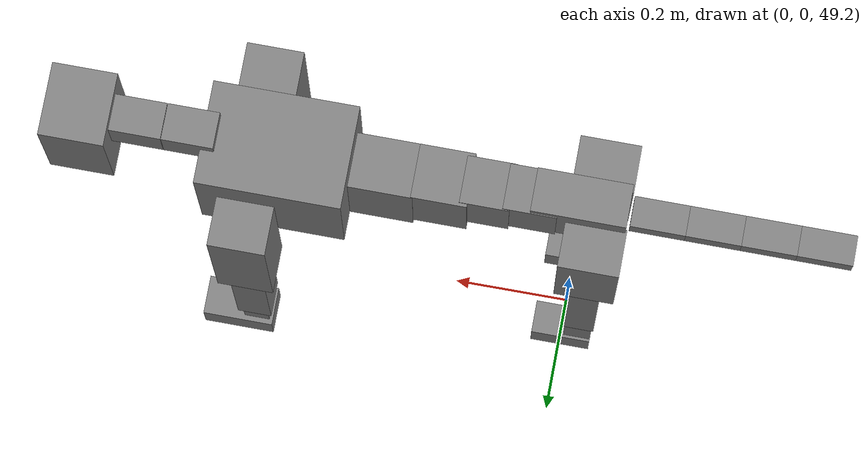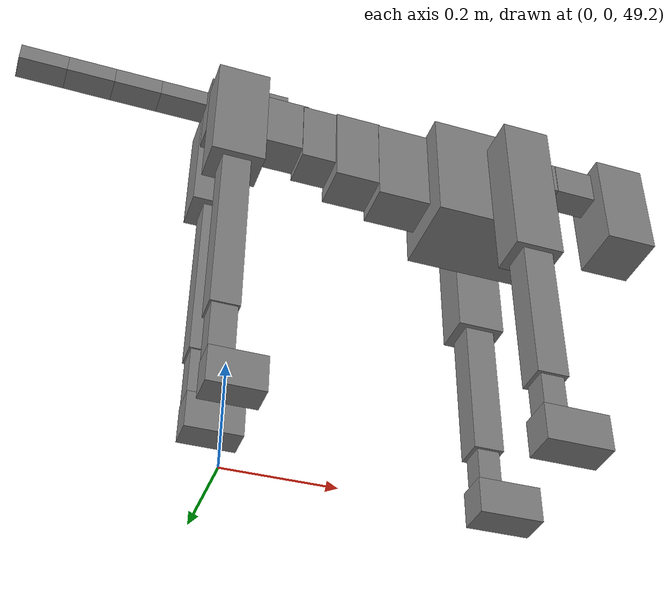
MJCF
<mujoco model="dog">

    <default>
        <joint armature="0.02" stiffness="1" damping="0.2" limited="true"/>
        <geom condim="3" friction="1 0.05 0.05" margin="0.01"/>
        <motor ctrllimited="true" ctrlrange="-1.0 1.0" forcelimited="true" gear="50"/>
    </default>

    <compiler inertiafromgeom="true" angle="radian"/>

    <option timestep="0.016" iterations="50" tolerance="1e-10" solver="Newton" jacobian="dense" cone="pyramidal"/>

    <size nconmax="20000" njmax="60000" nstack="5000000"/>
    <visual>
        <map force="0.1" zfar="30"/>
        <rgba haze="0.15 0.25 0.35 1"/>
        <quality shadowsize="2048"/>
        <global offwidth="800" offheight="800"/>
    </visual>

    <asset>
        <texture type="skybox" builtin="gradient" rgb1="0.3 0.5 0.7" rgb2="0 0 0" width="512" height="512"/>
        <texture name="texplane" type="2d" builtin="checker" rgb1=".2 .3 .4" rgb2=".1 0.15 0.2" width="512" height="512"
                 mark="cross" markrgb=".8 .8 .8"/>
        <texture name="texgeom" type="cube" builtin="flat" mark="cross" width="127" height="1278" rgb1="0.8 0.6 0.4"
                 rgb2="0.8 0.6 0.4" markrgb="1 1 1" random="0.01"/>

        <material name="matplane" reflectance="0.3" texture="texplane" texrepeat="1 1" texuniform="true"/>
        <material name="matgeom" texture="texgeom" texuniform="true" rgba="0.8 0.6 .4 1"/>
    </asset>

    <worldbody>
        <geom name="floor" pos="0 0 0" size="0 0 .25" type="plane" material="matplane" condim="3"/>

        <light directional="false" diffuse=".2 .2 .2" specular="0 0 0" pos="0 0 5" dir="0 0 -1" castshadow="false"/>
        <light mode="targetbodycom" target="torso" directional="false" diffuse=".8 .8 .8" specular="0.3 0.3 0.3"
               pos="0 0 4.0" dir="0 0 -1"/>

        <body name="root" pos="0 0 50">
            <freejoint name="root_1"/>
            <geom type="box" pos="0 0 -0.02" size="0.0774  0.0358  0.063" density="2030"/>

            <body name="spine1" pos="0.054 0 0">
                <joint name="spine1_y" axis="0 1 0" range="0 0.7" limited="true"/>
                <geom type="box" pos="0.02375 0 -0.03" size="0.04375  0.0375  0.05985" density="2030"/>

                <body name="spine2" pos="0.0612 0 0">
                    <joint name="spine2_y" axis="0 1 0" range="-0.15 0.15" limited="true"/>
                    <geom type="box" pos="0.03555  0  -0.04" size="0.04055  0.039  0.06615" density="2030"/>

                    <body name="spine3" pos="0.0730 0 0">
                        <joint name="spine3_y" axis="0 1 0" range="-0.15 0.15" limited="true"/>
                        <geom type="box" pos="0.03555  0  -0.057" size="0.04555  0.0445  0.081" density="2030"/>

                        <body name="spine4" pos="0.0780 0 0">
                            <joint name="spine4_y" axis="0 1 0" range="-0.15 0.15" limited="true"/>
                            <geom type="box" pos="0.05265  0  -0.07" size="0.05265  0.045  0.09135" density="2030"/>

                            <body name="torso" pos="0.1082 0 0">
                                <joint name="torso_y" axis="0 1 0" range="-0.15 0.15" limited="true"/>
                                <geom type="box" pos="0.11925  0  -0.085" size="0.11925  0.085  0.11745"
                                      density="2030"/>

                                <body name="neck1" pos="0.2160  0   0.0180">
                                    <joint name="neck1_y" axis="0 1 0" range="-1.2  -1" limited="true"/>
                                    <geom type="box" pos="0.0423  0  0" size="0.0423  0.03  0.036" density="2325"/>

                                    <body name="neck2" pos="0.0853  0  0">
                                        <joint name="neck2_y" axis="0 1 0" range="0.1  0" limited="true"/>
                                        <geom type="box" pos="0.0423  0  0" size="0.0423  0.03  0.036" density="2325"/>

                                        <body name="head" pos="0.0853  0  0">
                                            <joint name="head_y" axis="0 1 0" range="-0.3  -0.2" limited="true"/>
                                            <geom type="box" pos="0.0531  0  -0.055" size="0.0531  0.06  0.1044"
                                                  density="4030"/>

                                        </body>
                                    </body>
                                </body>

                                <body name="front_shoulder" pos="0.156  0   -0.0480">
                                    <joint name="front_shoulder_y" axis="0 1 0" range="-1 1.5" limited="true"/>
                                    <geom type="box" pos="0 0.13 -0.1265" size="0.0471  0.0403  0.1531" density="1158"/>
                                    <geom type="box" pos="0 -0.13 -0.1265" size="0.0471  0.0403  0.1531"
                                          density="1158"/>

                                    <body name="front_elbow" pos="0  0  -0.2529">
                                        <joint name="front_elbow_y" axis="0 1 0" range="-2 0" limited="true"/>
                                        <geom type="box" pos="0 0.13 -0.1503" size="0.0294  0.0300  0.1503"
                                              density="1081"/>
                                        <geom type="box" pos="0 -0.13 -0.1503" size="0.0294  0.0300  0.1503"
                                              density="1081"/>

                                        <body name="front_wrist" pos="0  0  -0.3005">
                                            <joint name="front_wrist_y" axis="0 1 0" range="-0.2 0" limited="true"/>
                                            <geom type="box" pos="0 0.13 -0.0406" size="0.0219  0.0243  0.0537"
                                                  density="1664"/>
                                            <geom type="box" pos="0 -0.13 -0.0406" size="0.0219  0.0243  0.0537"
                                                  density="1664"/>

                                            <body name="front_finger_end" pos="0  0  -0.0811">
                                                <joint name="front_finger_y" axis="0 1 0" range="-0.4 1"
                                                       limited="true"/>
                                                <geom type="box" pos="0.0334  0.13  -0.0195"
                                                      size="0.0613  0.0334  0.0345" density="1515"/>
                                                <geom type="box" pos="0.0334  -0.13  -0.0195"
                                                      size="0.0613  0.0334  0.0345" density="1515"/>

                                            </body>

                                        </body>
                                    </body>
                                </body>

                            </body>
                        </body>
                    </body>
                </body>
            </body>

            <body name="back_hip" pos="-0.03 0 -0.018">
                <joint name="back_hip_y" axis="0 1 0" range="-1.5 0.3" limited="true"/>
                <geom type="box" pos="0 0.07 -0.0872" size="0.0498  0.0391  0.1100" density="1154"/>
                <geom type="box" pos="0 -0.07 -0.0872" size="0.0498  0.0391  0.1100" density="1154"/>

                <body name="back_knee" pos="0  0  -0.1745">
                    <joint name="back_knee_y" axis="0 1 0" range="0 2.8" limited="true"/>
                    <geom type="box" pos="0 0.07 -0.1704" size="0.0266  0.0262  0.1860" density="1227"/>
                    <geom type="box" pos="0 -0.07 -0.1704" size="0.0266  0.0262  0.1860" density="1227"/>

                    <body name="back_ankle" pos="0  0  -0.3408">
                        <joint name="back_ankle_y" axis="0 1 0" range="-2.2 0" limited="true"/>
                        <geom type="box" pos="0 0.07 -0.0602" size="0.0231  0.0231  0.0714" density="1284"/>
                        <geom type="box" pos="0 -0.07 -0.0602" size="0.0231  0.0231  0.0714" density="1284"/>

                        <body name="back_toe_end" pos="0  0  -0.1204">
                            <joint name="back_toe_y" axis="0 1 0" range="-0.4 1" limited="true"/>
                            <geom type="box" pos="0.0281  0.07  -0.0194" size="0.0514  0.0281  0.0344" density="1515"/>
                            <geom type="box" pos="0.0281  -0.07  -0.0194" size="0.0514  0.0281  0.0344" density="1515"/>

                        </body>
                    </body>
                </body>
            </body>

            <body name="tail1" pos="-0.074 0 -0.006">
                <joint name="tail1_y" axis="0 1 0" range="-0.2 0.2" limited="true"/>
                <geom type="box" pos="-0.0536  0  0" size="0.045  0.025  0.0175" density="1587"/>

                <body name="tail2" pos="-0.09 0 0">
                    <joint name="tail2_y" axis="0 1 0" range="-0.2 0.2" limited="true"/>
                    <geom type="box" pos="-0.0536  0  0" size="0.045  0.025  0.0175" density="1587"/>

                    <body name="tail3" pos="-0.09 0 0">
                        <joint name="tail3_y" axis="0 1 0" range="-0.2 0.2" limited="true"/>
                        <geom type="box" pos="-0.0536  0  0" size="0.045  0.025  0.0175" density="1587"/>

                        <body name="tail4" pos="-0.09 0 0">
                            <joint name="tail4_y" axis="0 1 0" range="-0.2 0.2" limited="true"/>
                            <geom type="box" pos="-0.0536  0  0" size="0.045  0.025  0.0175" density="1587"/>

                        </body>
                    </body>
                </body>
            </body>
        </body>
    </worldbody>

    <actuator>
        <motor joint="spine1_y" forcerange="-150 150     "/>
        <motor joint="spine2_y" forcerange="-150 150     "/>
        <motor joint="spine3_y" forcerange="-150 150     "/>
        <motor joint="spine4_y" forcerange="-150 150     "/>
        <motor joint="torso_y" forcerange="-150 150     "/>
        <motor joint="neck1_y" forcerange="-100 100       "/>
        <motor joint="neck2_y" forcerange="-100 100       "/>
        <motor joint="head_y" forcerange="-150 150       "/>
        <motor joint="front_shoulder_y" forcerange="-188.95 179.46"/>
        <motor joint="front_elbow_y" forcerange="-147.04 171.38"/>
        <motor joint="front_wrist_y" forcerange="-62.48 132.01"/>
        <motor joint="front_finger_y" forcerange="-63.47 74.72"/>
        <motor joint="back_hip_y" forcerange="-356.12 364.77"/>
        <motor joint="back_knee_y" forcerange="-303.63 278.13"/>
        <motor joint="back_angle_y" forcerange="-72.59 196.55"/>
        <motor joint="back_toe_y" forcerange="-47.74 96.76"/>
        <motor joint="tail1_y" forcerange="-50 50     "/>
        <motor joint="tail2_y" forcerange="-50 50     "/>
        <motor joint="tail3_y" forcerange="-50 50     "/>
        <motor joint="tail4_y" forcerange="-50 50     "/>
    </actuator>
</mujoco>
